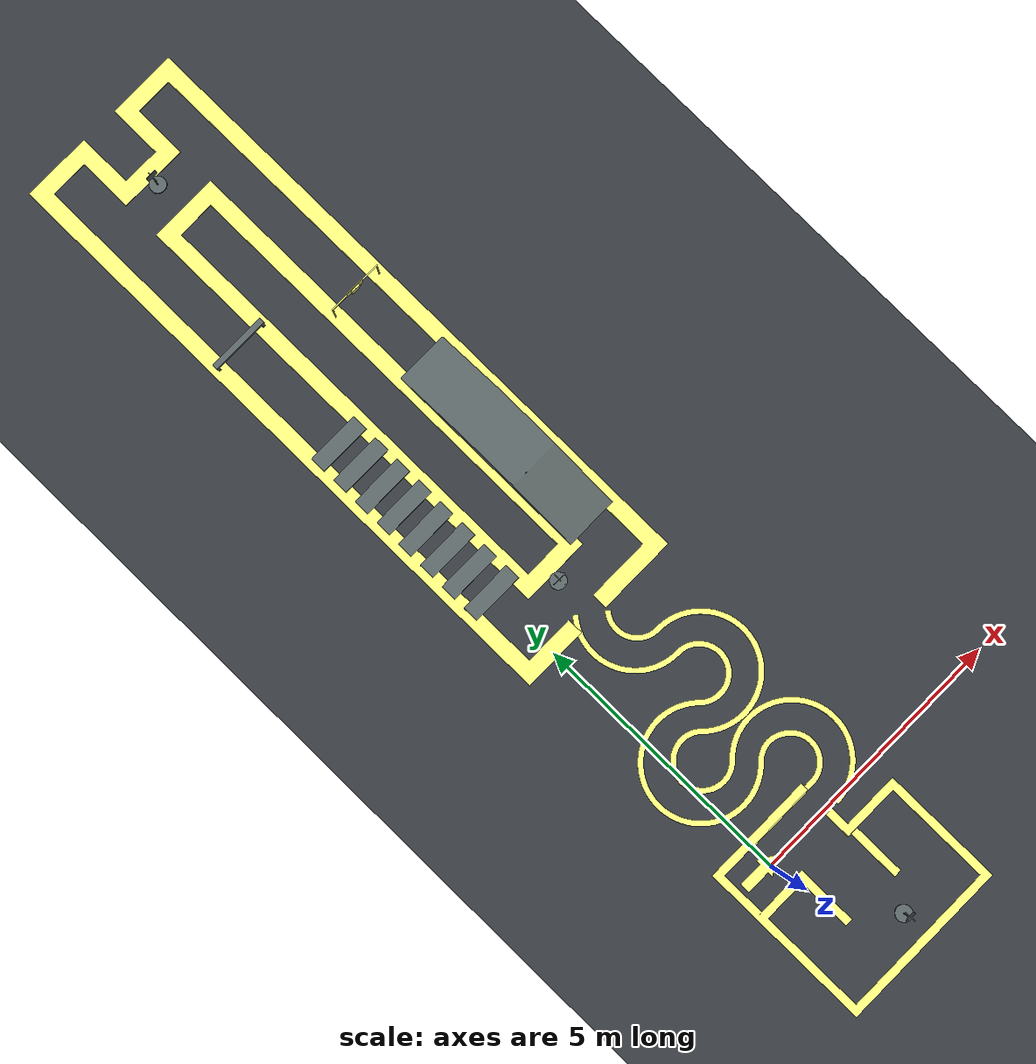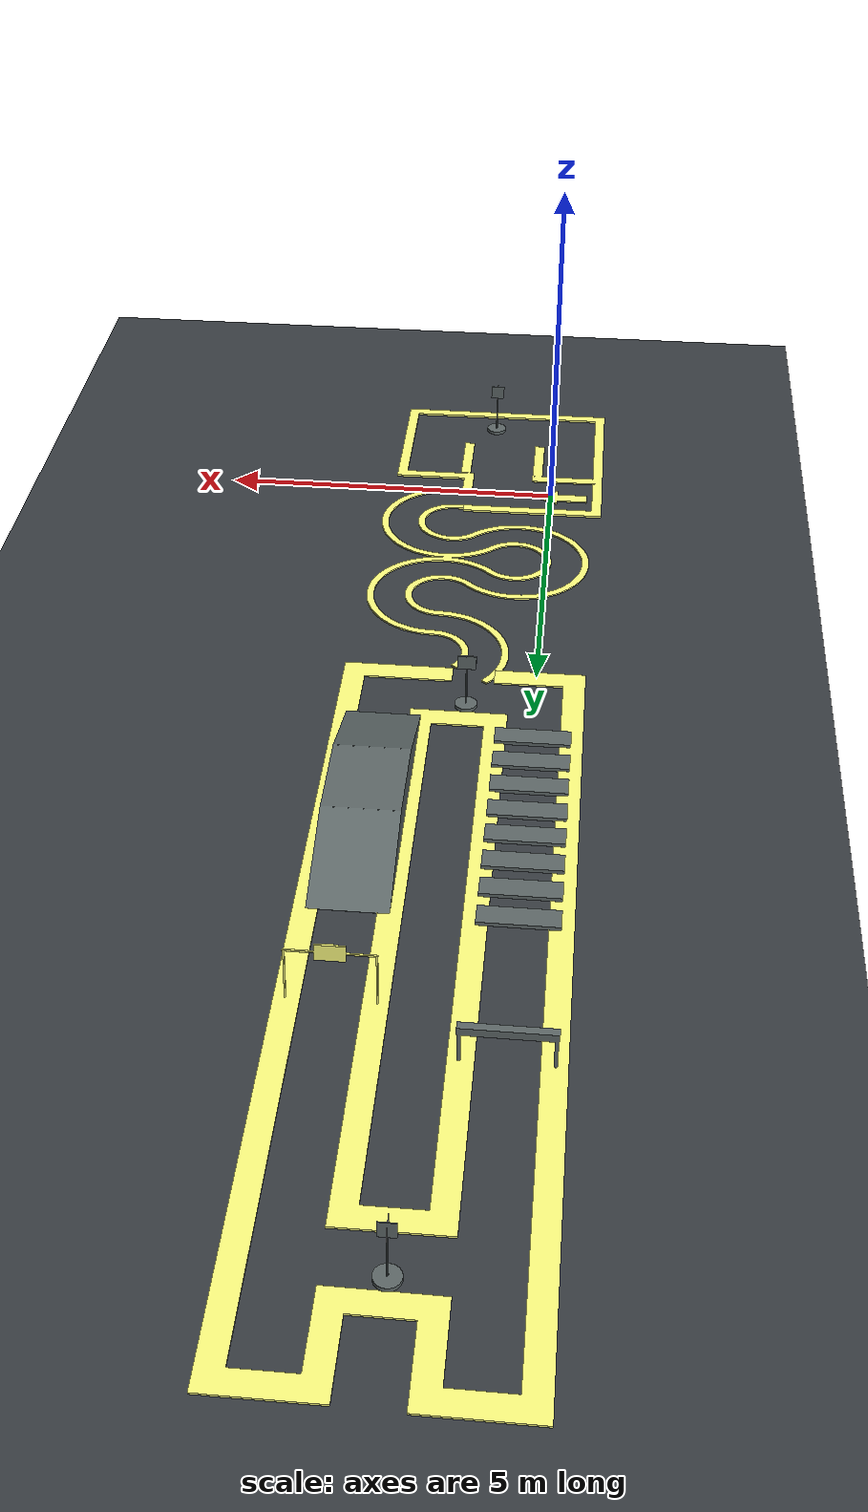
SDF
<?xml version="1.0" ?>
<sdf version="1.5">
    <world name="earth">

        <physics type="ode">
            <max_step_size>0.001</max_step_size>
            <real_time_factor>1</real_time_factor>
            <real_time_update_rate>1000</real_time_update_rate>
            <gravity>0 0 -9.81</gravity>
            <ode>
                <solver>
                <type>quick</type>
                <min_step_size>0.0001</min_step_size>
                <iters>50</iters>
                <sor>1.3</sor>
                </solver>
                <constraints>
                <cfm>0.0</cfm>
                <erp>0.2</erp>
                </constraints>
            </ode>
        </physics>

        <scene>

        </scene>

        <!-- A global light source -->
        <include>
            <uri>model://sun</uri>
        </include>

  <model name="ground_plane">

    		<static>true</static>
    		<link name="link">
      		<collision name="collision">
        		<geometry>
          		<plane>
            			<normal>0 0 1</normal>
            			<size>100 100</size>
          		</plane>
        		</geometry>
			<surface>
		  		<friction>
		    		<ode>
		      		<mu>100</mu>
		      		<mu2>50</mu2>
		    		</ode>
		  		</friction>
			</surface>
      		</collision>
	      <visual name="visual">
		<cast_shadows>false</cast_shadows>
		<geometry>
		  <plane>
		    <normal>0 0 1</normal>
		    <size>100 100</size>
		  </plane>
		</geometry>
		<material>
			<ambient>0.22 0.24 0.26 1</ambient>
        		<diffuse>0.22 0.24 0.26 1</diffuse>
		</material>
	      </visual>
    </link>
  </model>

        <model name='race'>
           <pose>0 17 -0.065  0 0 -1.57</pose>
      	   <static>true</static>
           <link name='Aarea_wall_00'>
           	<pose>0 0 0.01  0 0 0</pose>
           	<collision name="Aarea_wall_00_collision">
                    <geometry>
                    	<mesh>
              		<uri>/home/cennum/cyberdog_sim/src/cyberdog_simulator/cyberdog_gazebo/model/race_meshes/Aarea_wall_00.stl</uri>
              		<scale>0.01 0.01 0.01</scale>
            		</mesh>
                    </geometry>
                </collision>
        	<visual name="Aarea_wall_00_visual">
          		<geometry>
          			<mesh>
              			   <uri>/home/cennum/cyberdog_sim/src/cyberdog_simulator/cyberdog_gazebo/model/race_meshes/Aarea_wall_00.stl</uri>
              			   <scale>0.01 0.01 0.01</scale>
            			</mesh>
          		</geometry>
          		<material>
        			<ambient>1 1 0.5 1</ambient>
        			<diffuse>1 1 0.5 1</diffuse>
      			</material>
                </visual>
           </link>

           <link name='s_curve_01'>
           	<collision name="s_curve_01_collision">
                    <geometry>
                    	<mesh>
              		<uri>/home/cennum/cyberdog_sim/src/cyberdog_simulator/cyberdog_gazebo/model/race_meshes/s_curve_01.stl</uri>
              		<scale>1 1 1</scale>
            		</mesh>
                    </geometry>
                </collision>
        	<visual name="s_curve_01_visual">
          		<geometry>
          			<mesh>
              			   <uri>/home/cennum/cyberdog_sim/src/cyberdog_simulator/cyberdog_gazebo/model/race_meshes/s_curve_01.stl</uri>
              			   <scale>1 1 1</scale>
            			</mesh>
          		</geometry>
          		<material>
        			<ambient>1 1 0.5 1</ambient>
        			<diffuse>1 1 0.5 1</diffuse>
      			</material>
                </visual>
           </link>

           <link name='Barea_wall_02'>
           	<collision name="Barea_wall_02_collision">
                    <geometry>
                    	<mesh>
              		<uri>/home/cennum/cyberdog_sim/src/cyberdog_simulator/cyberdog_gazebo/model/race_meshes/Barea_wall_02.stl</uri>
              		<scale>1 1 1</scale>
            		</mesh>
                    </geometry>
                </collision>
        	<visual name="Barea_wall_02_visual">
          		<geometry>
          			<mesh>
              			   <uri>/home/cennum/cyberdog_sim/src/cyberdog_simulator/cyberdog_gazebo/model/race_meshes/Barea_wall_02.stl</uri>
              			   <scale>1 1 1</scale>
            			</mesh>
          		</geometry>
          		<material>
        			<ambient>1 1 0.5 1</ambient>
        			<diffuse>1 1 0.5 1</diffuse>
      			</material>
                </visual>
           </link>

           <link name='Barea_rod_03'>
           <pose>0 0 -0.0055  0 0 0</pose>
           	<collision name="Barea_rod_03_collision">
                    <geometry>
                    	<mesh>
              		<uri>/home/cennum/cyberdog_sim/src/cyberdog_simulator/cyberdog_gazebo/model/race_meshes/Barea_rod_03.stl</uri>
              		<scale>1 1 1</scale>
            		</mesh>
                    </geometry>
                </collision>
        	<visual name="Barea_rod_03_visual">
          		<geometry>
          			<mesh>
              			   <uri>/home/cennum/cyberdog_sim/src/cyberdog_simulator/cyberdog_gazebo/model/race_meshes/Barea_rod_03.stl</uri>
              			   <scale>0.01 0.01 0.01</scale>
            			</mesh>
          		</geometry>
          		<material>
        			<ambient>0.37 0.41 0.41 1</ambient>
        			<diffuse>0.37 0.41 0.41 1</diffuse>
      			</material>
                </visual>
           </link>

           <link name='Barea_slope_04'>
           <pose>0 0 -0.005  0 0 0</pose>
           	<collision name="Barea_slope_04_collision">
                    <geometry>
                    	<mesh>
              		<uri>/home/cennum/cyberdog_sim/src/cyberdog_simulator/cyberdog_gazebo/model/race_meshes/Barea_slope_04.stl</uri>
              		<scale>1 1 1</scale>
            		</mesh>
                    </geometry>
                </collision>
        	<visual name="Barea_slope_04_visual">
          		<geometry>
          			<mesh>
              			   <uri>/home/cennum/cyberdog_sim/src/cyberdog_simulator/cyberdog_gazebo/model/race_meshes/Barea_slope_04.stl</uri>
              			   <scale>1 1 1</scale>
            			</mesh>
          		</geometry>
          		<material>
        			<ambient>0.37 0.41 0.41 1</ambient>
        			<diffuse>0.37 0.41 0.41 1</diffuse>
      			</material>
                </visual>
           </link>

           <link name='Barea_stoneroad_05'>
           <pose>0 0 -0.005  0 0 0</pose>
           	<collision name="Barea_stoneroad_05_collision">
                    <geometry>
                    	<mesh>
              		<uri>/home/cennum/cyberdog_sim/src/cyberdog_simulator/cyberdog_gazebo/model/race_meshes/Barea_stoneroad_05.stl</uri>
              		<scale>1 1 1</scale>
            		</mesh>
                    </geometry>
                </collision>
        	<visual name="Barea_stoneroad_05_visual">
          		<geometry>
          			<mesh>
              			   <uri>/home/cennum/cyberdog_sim/src/cyberdog_simulator/cyberdog_gazebo/model/race_meshes/Barea_stoneroad_05.stl</uri>
              			   <scale>1 1 1</scale>
            			</mesh>
          		</geometry>
          		<material>
        			<ambient>0.37 0.41 0.41 1</ambient>
        			<diffuse>0.37 0.41 0.41 1</diffuse>
      			</material>
                </visual>
           </link>

           <link name='arrow_broad_06'>
           <pose>0 0 -0.005  0 0 0</pose>
        	<visual name="Barea_stoneroad_05_visual">
          		<geometry>
          			<mesh>
              			   <uri>/home/cennum/cyberdog_sim/src/cyberdog_simulator/cyberdog_gazebo/model/race_meshes/arrow_broad_06.stl</uri>
              			   <scale>1 1 1</scale>
            			</mesh>
          		</geometry>
          		<material>
        			<ambient>0.37 0.41 0.41 1</ambient>
        			<diffuse>0.37 0.41 0.41 1</diffuse>
      			</material>
                </visual>
           </link>

           <link name="arrow">
    		<pose>11.22068 0.90727 0.77518  1.57 3.14 1.57</pose>
		      <visual name="arrow_visual">
			<cast_shadows>false</cast_shadows>
			<geometry>
			  <plane>
			    <normal>1 0 0</normal>
			    <size>0.25 0.2</size>
			  </plane>
			</geometry>
			<material>
				<script>
		  		<uri>file://media/materials/scripts/gazebo.material</uri>
		  		<name>Gazebo/Arrow_R</name>
				</script>
			</material>
		      </visual>
    		</link>

    		<link name='QR_code_A1_07'>
           <pose>0 0 -0.005  0 0 0</pose>
        	<visual name="QR_code_A1_07_visual">
          		<geometry>
          			<mesh>
              			   <uri>/home/cennum/cyberdog_sim/src/cyberdog_simulator/cyberdog_gazebo/model/race_meshes/QR_code_A1_07.stl</uri>
              			   <scale>1 1 1</scale>
            			</mesh>
          		</geometry>
          		<material>
        			<ambient>0.37 0.41 0.41 1</ambient>
        			<diffuse>0.37 0.41 0.41 1</diffuse>
      			</material>
                </visual>
           </link>

           <link name='QR_code_B1_08'>
           <pose>0 0 -0.005  0 0 0</pose>
        	<visual name="QR_code_B1_08_visual">
          		<geometry>
          			<mesh>
              			   <uri>/home/cennum/cyberdog_sim/src/cyberdog_simulator/cyberdog_gazebo/model/race_meshes/QR_code_B1_08.stl</uri>
              			   <scale>1 1 1</scale>
            			</mesh>
          		</geometry>
          		<material>
        			<ambient>0.37 0.41 0.41 1</ambient>
        			<diffuse>0.37 0.41 0.41 1</diffuse>
      			</material>
                </visual>
           </link>

           <link name="QR_code_A1">
    		<pose>19.0913 0.96607 0.77518 -1.57 0 1.57</pose>
		      <visual name="QR_code_A1_visual">
			<cast_shadows>false</cast_shadows>
			<geometry>
			  <plane>
			    <normal>1 0 0</normal>
			    <size>0.2 0.2</size>
			  </plane>
			</geometry>
			<material>
				<script>
		  		<uri>file://media/materials/scripts/gazebo.material</uri>
		  		<name>Gazebo/QR_code_A2</name>
				</script>
			</material>
		      </visual>
    		</link>

    		<link name="QR_code_B1">
    		<pose>1.732545 0.96607 0.77518 1.57 0 1.57</pose>
		      <visual name="QR_code_B1_visual">
			<cast_shadows>false</cast_shadows>
			<geometry>
			  <plane>
			    <normal>1 0 0</normal>
			    <size>0.2 0.2</size>
			  </plane>
			</geometry>
			<material>
				<script>
		  		<uri>file://media/materials/scripts/gazebo.material</uri>
		  		<name>Gazebo/QR_code_B2</name>
				</script>
			</material>
		      </visual>
    		</link>

     </model>

     <model name='yellow_light'>
           <pose>0 17 -0.065  0 0 -1.57</pose>
      	   <static>true</static>
           <link name='light_broad_09'>
        	<visual name="light_broad_09_visual">
          		<geometry>
          			<mesh>
              			   <uri>/home/cennum/cyberdog_sim/src/cyberdog_simulator/cyberdog_gazebo/model/race_meshes/light_broad_09.stl</uri>
              			   <scale>1 1 1</scale>
            			</mesh>
          		</geometry>
          		<material>
        			<ambient>1 1 0.5 1</ambient>
        			<diffuse>1 1 0.5 1</diffuse>
      			</material>
                </visual>
           </link>
     </model>

    </world>
</sdf>
